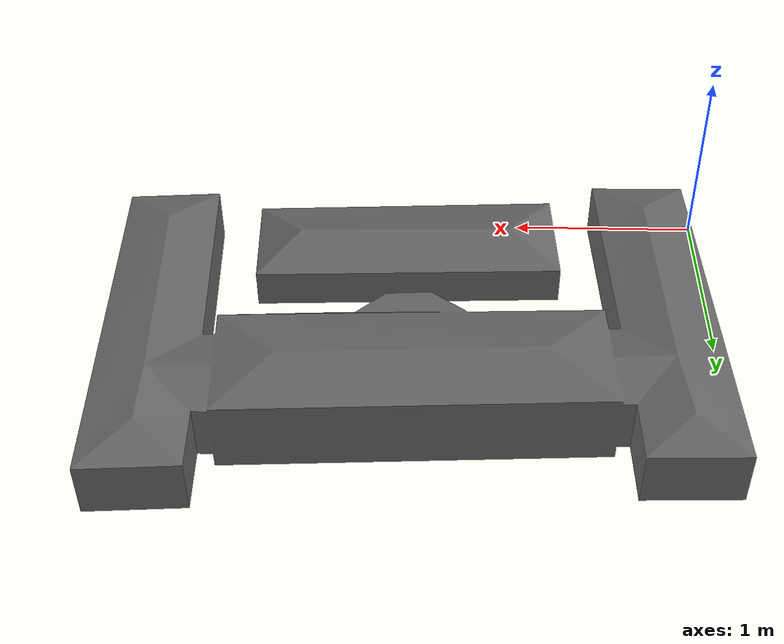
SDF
<sdf version='1.6'>
  <model name='building'>
    <link name='cmu_house'>
      <pose frame=''>0 0 0 0 -0 0</pose>
      <inertial>
        <pose frame=''>-0.1 0 0.07 0 -0 0</pose>
        <mass>5</mass>
        <inertia>
          <ixx>0.05</ixx>
          <ixy>0</ixy>
          <ixz>0</ixz>
          <iyy>0.06</iyy>
          <iyz>0</iyz>
          <izz>0.03</izz>
        </inertia>
      </inertial>
      <visual name='cmu_hh_remesh'>
        <pose frame=''>0 0 0 0 0 0</pose>
        <geometry>
          <mesh>
            <scale>0.03 0.03 0.03</scale>
            <uri>/home/andiedeng/drake_periscope_tutorial/models/cmu_hh_remesh.obj</uri>
          </mesh>
        </geometry>
        <material>
          <diffuse>0.4 0.4 0.4 1.0</diffuse>
        </material>
      </visual>
    </link>
  </model>
</sdf>
